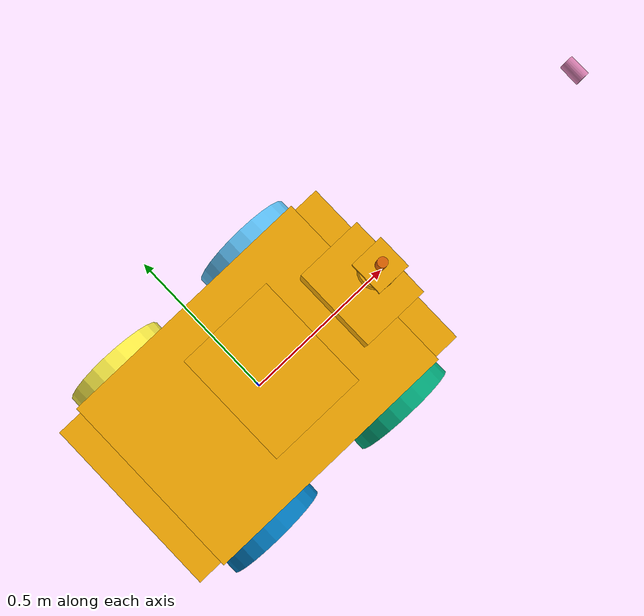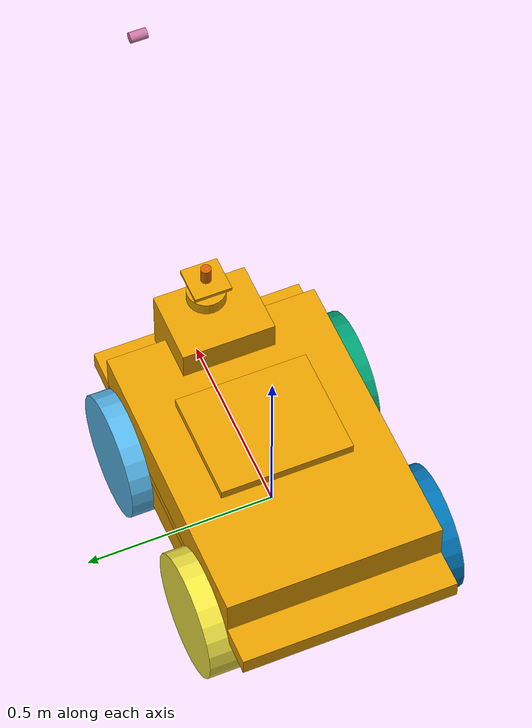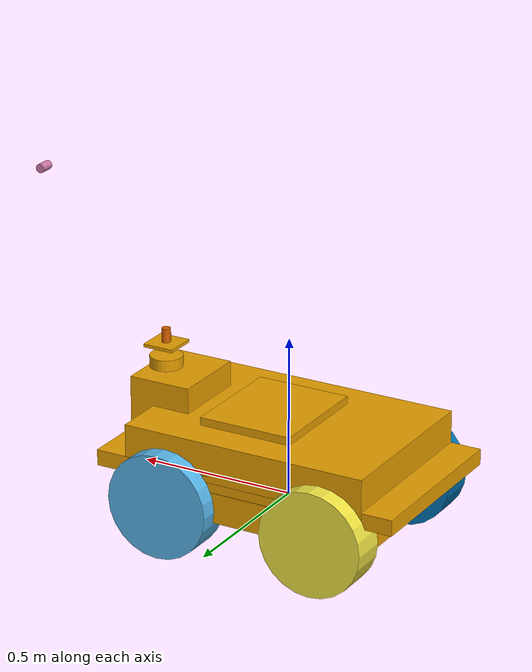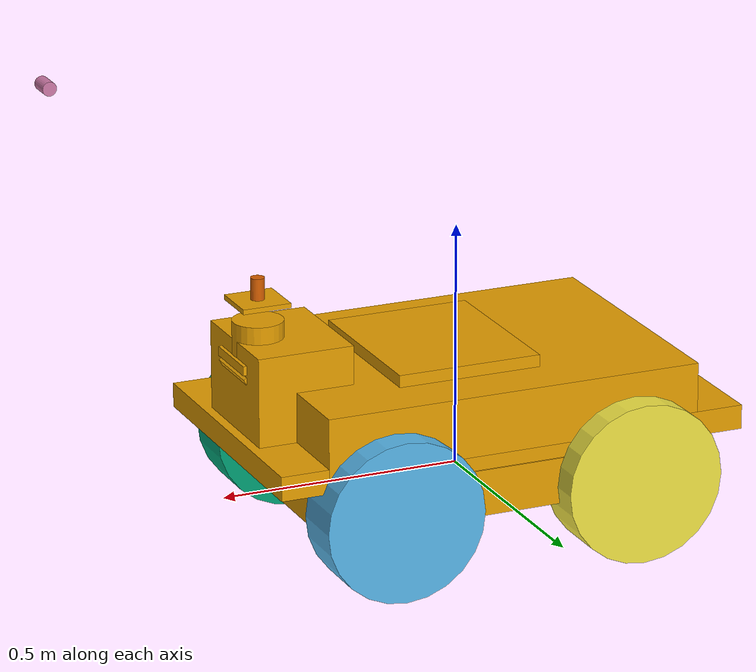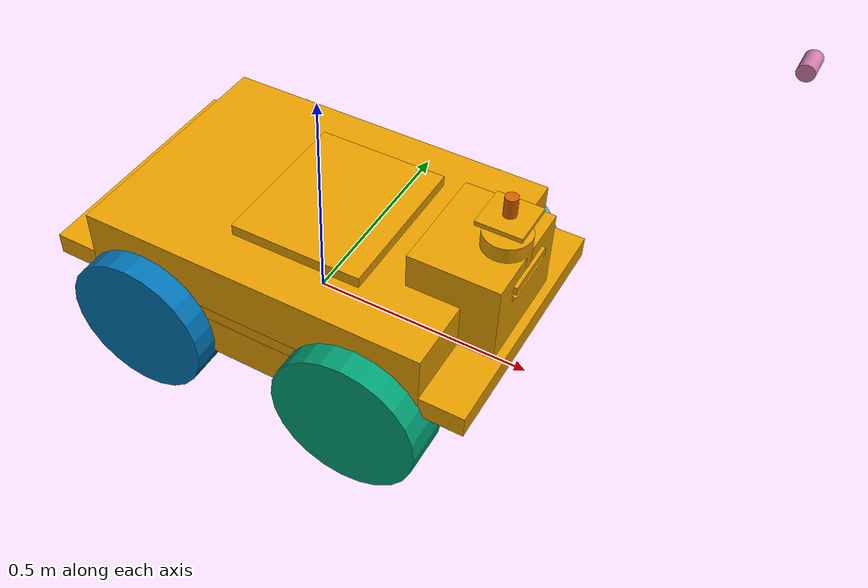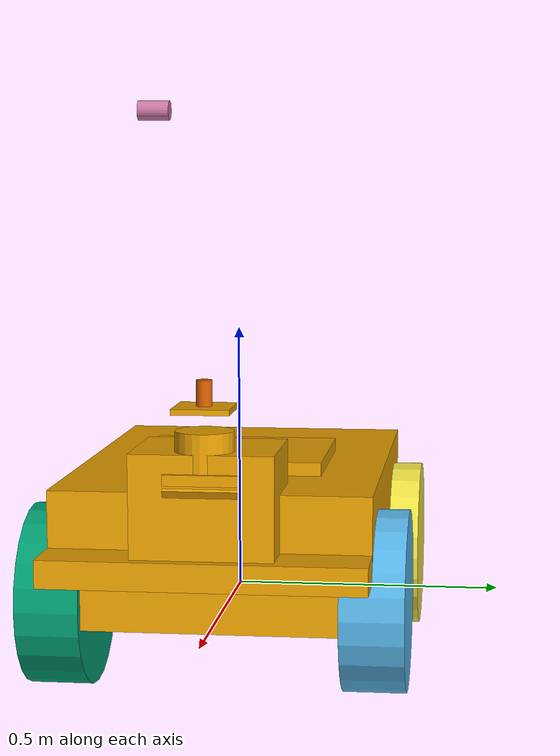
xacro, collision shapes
<?xml version='1.0' encoding='utf-8'?>
<robot name='marble_husky_sensor_config_6' xmlns:xacro='http://ros.org/wiki/xacro'>
  <xacro:arg name="name" default="marble_husky_sensor_config_6"/>
  <xacro:property name="robot_namespace" value="$(arg name)"/>
  <link name='${robot_namespace}/base_link'>
    <inertial>
      <origin xyz='-0.000543 -0.084945 0.062329' rpy='0 -0 0'/>
      <mass value='46.064'/>
      <inertia ixx='0.615397' ixy='-0.0240585' ixz='-0.120749' iyy='1.75388' iyz='-0.0028322' izz='2.03641'/>
    </inertial>
    <collision name='base_link_collision'>
      <origin xyz='0 0 0.12' rpy='0 -0 0'/>
      <geometry>
        <box size='0.9874 0.5709 0.05'/>
      </geometry>
    </collision>
    <collision name='base_link_collision_bottom'>
      <origin xyz='0 0 0.046' rpy='0 -0 0'/>
      <geometry>
        <box size='0.8 0.5709 0.095'/>
      </geometry>
    </collision>
    <collision name='base_link_collision_1'>
      <origin xyz='0 0 0.185625' rpy='0 -0 0'/>
      <geometry>
        <box size='0.78992 0.5709 0.12375'/>
      </geometry>
    </collision>
    <collision name='base_link_fixed_joint_lump__camera/camera_link_collision_1'>
      <origin xyz='0 0 0.05' rpy='0 -0 0'/>
      <geometry>
        <box size='0.0078 0.13 0.0192'/>
      </geometry>
    </collision>
    <collision name='base_link_fixed_joint_lump__camera/camera_link_collision_2'>
      <origin xyz='0.478 0 0.285' rpy='0 -0 0'/>
      <geometry>
        <box size='0.0078 0.13 0.0192'/>
      </geometry>
    </collision>
    <collision name='base_link_fixed_joint_lump__camera/camera_link_collision_3'>
      <origin xyz='0.473 0 0.26' rpy='0 0.5236 0'/>
      <geometry>
        <box size='0.0078 0.13 0.0192'/>
      </geometry>
    </collision>
    <collision name='base_link_fixed_joint_lump__velodyne_base_link_collision_6'>
      <origin xyz='0.424 0 0.327' rpy='0 -0 0'/>
      <geometry>
        <cylinder radius='0.0516' length='0.0717'/>
      </geometry>
    </collision>
    <collision name='base_link_fixed_joint_lump__velodyne_gimbal_plate_base_link_collision_7'>
      <origin xyz='0.424 0 0.4' rpy='0 -0 0'/>
      <geometry>
        <box size='0.1 0.1 0.01'/>
      </geometry>
    </collision>
    <collision name='base_link_fixed_joint_lump__sensor_tower_8'>
      <origin xyz='0.374 0 0.215' rpy='0 -0 0'/>
      <geometry>
        <box size='0.2 0.25 0.225'/>
      </geometry>
    </collision>
    <collision name='base_link_fixed_joint_lump__computer_block_9'>
      <origin xyz='0.05 0 0.185' rpy='0 -0 0'/>
      <geometry>
        <box size='0.3 0.355 0.175'/>
      </geometry>
    </collision>
    <visual name='base_link_visual'>
      <origin xyz='0 0 0' rpy='0 -0 0'/>
      <geometry>
        <mesh filename='package://marble_husky_sensor_config_6/meshes/base_link.dae' scale='1 1 1'/>
      </geometry>
    </visual>
    <visual name='base_link_fixed_joint_lump__camera/camera_link_visual_1'>
      <origin xyz='0.478 0 0.26' rpy='0 0.5236 0'/>
      <geometry>
        <mesh filename='package://marble_husky_sensor_config_6/meshes/realsense.dae' scale='1 1 1'/>
      </geometry>
    </visual>
    <visual name='base_link_fixed_joint_lump__camera/camera_link_visual_2'>
      <origin xyz='0.478 0 0.285' rpy='0 -0 0'/>
      <geometry>
        <mesh filename='package://marble_husky_sensor_config_6/meshes/realsense.dae' scale='1 1 1'/>
      </geometry>
    </visual>
    <visual name='base_link_fixed_joint_lump__front_bumper_link_visual_3'>
      <origin xyz='0.48 0 0.091' rpy='0 -0 0'/>
      <geometry>
        <mesh filename='package://marble_husky_sensor_config_6/meshes/bumper.dae' scale='1 1 1'/>
      </geometry>
    </visual>
    <visual name='base_link_fixed_joint_lump__rear_bumper_link_visual_4'>
      <origin xyz='-0.48 0 0.091' rpy='0 -0 3.14159'/>
      <geometry>
        <mesh filename='package://marble_husky_sensor_config_6/meshes/bumper.dae' scale='1 1 1'/>
      </geometry>
    </visual>
    <visual name='base_link_fixed_joint_lump__top_chassis_link_visual_5'>
      <origin xyz='0 0 0' rpy='0 -0 0'/>
      <geometry>
        <mesh filename='package://marble_husky_sensor_config_6/meshes/top_chassis.dae' scale='1 1 1'/>
      </geometry>
    </visual>
    <visual name='base_link_fixed_joint_lump__velodyne_base_link_visual_10'>
      <origin xyz='0.424 0 0.327' rpy='0 -0 0'/>
      <geometry>
        <mesh filename='package://marble_husky_sensor_config_6/meshes/VLP16_base_1.dae' scale='1 1 1'/>
      </geometry>
    </visual>
    <visual name='base_link_fixed_joint_lump__velodyne_base_link_visual_11'>
      <origin xyz='0.424 0 0.327' rpy='0 -0 0'/>
      <geometry>
        <mesh filename='package://marble_husky_sensor_config_6/meshes/VLP16_base_2.dae' scale='1 1 1'/>
      </geometry>
    </visual>
    <visual name='base_link_fixed_joint_lump__velodyne_visual_12'>
      <origin xyz='0.424 0 0.327' rpy='0 -0 0'/>
      <geometry>
        <mesh filename='package://marble_husky_sensor_config_6/meshes/VLP16_scan.dae' scale='1 1 1'/>
      </geometry>
    </visual>
    <visual name='base_link_fixed_joint_lump__user_rail_link_visual_13'>
      <origin xyz='0.272 0 0.245' rpy='0 -0 0'/>
      <geometry>
        <mesh filename='package://marble_husky_sensor_config_6/meshes/user_rail.dae' scale='1 1 1'/>
      </geometry>
    </visual>
    <visual name='base_link_fixed_joint_lump__planar_lidar_link_visual_14'>
      <origin xyz='0.474 0 0.127' rpy='0 -0 0'/>
      <geometry>
        <cylinder radius='0.045' length='0.05'/>
      </geometry>
    </visual>
    <visual name='base_link_fixed_joint_lump__velodyne_gimbal_plate_15'>
      <origin xyz='0.424 0 0.4' rpy='0 -0 0'/>
      <geometry>
        <box size='0.06 0.06 0.01'/>
      </geometry>
    </visual>
    <visual name='base_link_fixed_joint_lump__sensor_tower_16'>
      <origin xyz='0.374 0 0.215' rpy='0 -0 0'/>
      <geometry>
        <box size='0.2 0.25 0.225'/>
      </geometry>
    </visual>
    <visual name='base_link_fixed_joint_lump__computer_block_17'>
      <origin xyz='0.05 0 0.185' rpy='0 -0 0'/>
      <geometry>
        <box size='0.3 0.355 0.175'/>
      </geometry>
    </visual>
  </link>
  <sensor name='camera_front' update_rate='30'>
    <parent link='${robot_namespace}/base_link'/>
    <origin xyz='0.468 0 0.36' rpy='0 -0 0'/>
    <camera>
      <image width='1280' height='720' format='R8G8B8' hfov='1.5184' near='0.01' far='300' />
    </camera>
  </sensor>
  <sensor name='camera_down' update_rate='30'>
    <parent link='${robot_namespace}/base_link'/>
    <origin xyz='0.473 0 0.335' rpy='0 0.5236 0'/>
    <camera>
      <image width='1280' height='720' format='R8G8B8' hfov='1.5184' near='0.01' far='300' />
    </camera>
  </sensor>
  <sensor name='planar_laser' update_rate='10'>
    <parent link='${robot_namespace}/base_link'/>
    <origin xyz='0.474 0 0.127' rpy='0 -0 0'/>
  </sensor>
  <sensor name='front_laser' update_rate='20'>
    <parent link='${robot_namespace}/base_link'/>
    <origin xyz='0.424 0 0.387' rpy='0 -0 0'/>
  </sensor>
  <sensor name='imu_sensor' update_rate='250'>
    <parent link='${robot_namespace}/base_link'/>
    <origin xyz='0 0 0' rpy='0 -0 0'/>
  </sensor>
  <link name='${robot_namespace}/front_left_wheel_link'>
    <inertial>
      <origin xyz='0 0 0' rpy='0 -0 0'/>
      <mass value='2.637'/>
      <inertia ixx='0.02467' ixy='0' ixz='0' iyy='0.04411' iyz='0' izz='0.02467'/>
    </inertial>
    <collision name='front_left_wheel_link_collision'>
      <origin xyz='0 0 0' rpy='1.5708 -0 0'/>
      <geometry>
        <cylinder radius='0.1651' length='0.1143'/>
      </geometry>
    </collision>
    <visual name='front_left_wheel_link_visual'>
      <origin xyz='0 0 0' rpy='0 -0 0'/>
      <geometry>
        <mesh filename='package://marble_husky_sensor_config_6/meshes/wheel.dae' scale='1 1 1'/>
      </geometry>
    </visual>
  </link>
  <link name='${robot_namespace}/front_right_wheel_link'>
    <inertial>
      <origin xyz='0 0 0' rpy='0 -0 0'/>
      <mass value='2.637'/>
      <inertia ixx='0.02467' ixy='0' ixz='0' iyy='0.04411' iyz='0' izz='0.02467'/>
    </inertial>
    <collision name='front_right_wheel_link_collision'>
      <origin xyz='0 0 0' rpy='1.5708 -0 0'/>
      <geometry>
        <cylinder radius='0.1651' length='0.1143'/>
      </geometry>
    </collision>
    <visual name='front_right_wheel_link_visual'>
      <origin xyz='0 0 0' rpy='0 -0 0'/>
      <geometry>
        <mesh filename='package://marble_husky_sensor_config_6/meshes/wheel.dae' scale='1 1 1'/>
      </geometry>
    </visual>
  </link>
  <link name='${robot_namespace}/rear_left_wheel_link'>
    <inertial>
      <origin xyz='0 0 0' rpy='0 -0 0'/>
      <mass value='2.637'/>
      <inertia ixx='0.02467' ixy='0' ixz='0' iyy='0.04411' iyz='0' izz='0.02467'/>
    </inertial>
    <collision name='rear_left_wheel_link_collision'>
      <origin xyz='0 0 0' rpy='1.5708 -0 0'/>
      <geometry>
        <cylinder radius='0.1651' length='0.1143'/>
      </geometry>
    </collision>
    <visual name='rear_left_wheel_link_visual'>
      <origin xyz='0 0 0' rpy='0 -0 0'/>
      <geometry>
        <mesh filename='package://marble_husky_sensor_config_6/meshes/wheel.dae' scale='1 1 1'/>
      </geometry>
    </visual>
  </link>
  <link name='${robot_namespace}/rear_right_wheel_link'>
    <inertial>
      <origin xyz='0 0 0' rpy='0 -0 0'/>
      <mass value='2.637'/>
      <inertia ixx='0.02467' ixy='0' ixz='0' iyy='0.04411' iyz='0' izz='0.02467'/>
    </inertial>
    <collision name='rear_right_wheel_link_collision'>
      <origin xyz='0 0 0' rpy='1.5708 -0 0'/>
      <geometry>
        <cylinder radius='0.1651' length='0.1143'/>
      </geometry>
    </collision>
    <visual name='rear_right_wheel_link_visual'>
      <origin xyz='0 0 0' rpy='0 -0 0'/>
      <geometry>
        <mesh filename='package://marble_husky_sensor_config_6/meshes/wheel.dae' scale='1 1 1'/>
      </geometry>
    </visual>
  </link>
  <link name='${robot_namespace}/pan_gimbal_link'>
    <inertial>
      <origin xyz='0 0 0' rpy='0 -0 0'/>
      <mass value='0.1'/>
      <inertia ixx='1' ixy='0' ixz='0' iyy='1' iyz='0' izz='1'/>
    </inertial>
    <collision name='pan_gimbal_link_collision'>
      <origin xyz='0 0 0' rpy='0 -0 0'/>
      <geometry>
        <cylinder radius='0.014' length='0.045'/>
      </geometry>
    </collision>
    <visual name='pan_gimbal_link_visual'>
      <origin xyz='0 0 0' rpy='0 -0 0'/>
      <geometry>
        <cylinder radius='0.014' length='0.045'/>
      </geometry>
    </visual>
  </link>
  <link name='${robot_namespace}/tilt_gimbal_link'>
    <inertial>
      <origin xyz='0 0 0' rpy='1.5708 -0 0'/>
      <mass value='0.1'/>
      <inertia ixx='1' ixy='0' ixz='0' iyy='1' iyz='0' izz='1'/>
    </inertial>
    <collision name='tilt_gimbal_link_collision'>
      <origin xyz='0 0 0' rpy='1.5708 -0 0'/>
      <geometry>
        <cylinder radius='0.014' length='0.045'/>
      </geometry>
    </collision>
    <visual name='tilt_gimbal_link_visual'>
      <origin xyz='0 0 0' rpy='1.5708 -0 0'/>
      <geometry>
        <cylinder radius='0.014' length='0.045'/>
      </geometry>
    </visual>
    <visual name='tilt_gimbal_link_fixed_joint_lump__camera/camera_link_visual_0'>
      <origin xyz='0 0 0.03' rpy='0 -0 0'/>
      <geometry>
        <mesh filename='package://marble_husky_sensor_config_6/meshes/realsense.dae' scale='1 1 1'/>
      </geometry>
    </visual>
    <visual name='tilt_gimbal_link_fixed_joint_lump_bot_camera_plate_link_visual_1'>
      <origin xyz='0 0 0.017' rpy='0 -0 0'/>
      <geometry>
        <box size='0.025 0.13 0.007'/>
      </geometry>
    </visual>
    <visual name='tilt_gimbal_link_fixed_joint_lump_bot_camera_plate_link_visual_2'>
      <origin xyz='0 0 0.042' rpy='0 -0 0'/>
      <geometry>
        <box size='0.025 0.13 0.007'/>
      </geometry>
    </visual>
    <visual name='flashlight_flashlight_light_source_lamp_viz_visual'>
      <origin xyz='0 0 0.065' rpy='-0 1.3208 3.14'/>
      <geometry>
        <cylinder radius='0.019' length='0.005'/>
      </geometry>
    </visual>
  </link>
  <sensor name='camera_pan_tilt' update_rate='30'>
    <parent link='${robot_namespace}/tilt_gimbal_link'/>
    <origin xyz='0 0 0.03' rpy='0 -0 0'/>
    <camera>
      <image width='1280' height='720' format='R8G8B8' hfov='1.5184' near='0.01' far='300' />
    </camera>
  </sensor>
  <joint name='front_left_wheel_joint' type='revolute'>
    <origin xyz='0.256 0.2854 0.03282' rpy='0 -0 0'/>
    <parent link='${robot_namespace}/base_link'/>
    <child link='${robot_namespace}/front_left_wheel_link'/>
    <dynamics damping='0' friction='0' />
    <axis xyz='0 1 0'/>
    <limit lower='-1e+16' upper='1e+16' effort='-1' velocity='-1'/>
  </joint>
  <joint name='front_right_wheel_joint' type='revolute'>
    <origin xyz='0.256 -0.2854 0.03282' rpy='0 -0 0'/>
    <parent link='${robot_namespace}/base_link'/>
    <child link='${robot_namespace}/front_right_wheel_link'/>
    <dynamics damping='0' friction='0' />
    <axis xyz='0 1 0'/>
    <limit lower='-1e+16' upper='1e+16' effort='-1' velocity='-1'/>
  </joint>
  <joint name='rear_left_wheel_joint' type='revolute'>
    <origin xyz='-0.256 0.2854 0.03282' rpy='0 -0 0'/>
    <parent link='${robot_namespace}/base_link'/>
    <child link='${robot_namespace}/rear_left_wheel_link'/>
    <dynamics damping='0' friction='0' />
    <axis xyz='0 1 0'/>
    <limit lower='-1e+16' upper='1e+16' effort='-1' velocity='-1'/>
  </joint>
  <joint name='rear_right_wheel_joint' type='revolute'>
    <origin xyz='-0.256 -0.2854 0.03282' rpy='0 -0 0'/>
    <parent link='${robot_namespace}/base_link'/>
    <child link='${robot_namespace}/rear_right_wheel_link'/>
    <dynamics damping='0' friction='0' />
    <axis xyz='0 1 0'/>
    <limit lower='-1e+16' upper='1e+16' effort='-1' velocity='-1'/>
  </joint>
  <joint name='pan_gimbal_joint' type='revolute'>
    <origin xyz='0.424 0 0.427' rpy='0 -0 0'/>
    <parent link='${robot_namespace}/base_link'/>
    <child link='${robot_namespace}/pan_gimbal_link'/>
    <dynamics damping='0' friction='0' />
    <axis xyz='0 0 1'/>
    <limit lower='-1e+16' upper='1e+16' effort='-1' velocity='-1'/>
  </joint>
  <joint name='tilt_gimbal_joint' type='revolute'>
    <origin xyz='0.424 0 0.46' rpy='0 -0 0'/>
    <parent link='${robot_namespace}/pan_gimbal_link'/>
    <child link='${robot_namespace}/tilt_gimbal_link'/>
    <dynamics damping='0' friction='0' />
    <axis xyz='0 1 0'/>
    <limit lower='-2.79253' upper='2.79253' effort='-1' velocity='-1'/>
  </joint>
</robot>
